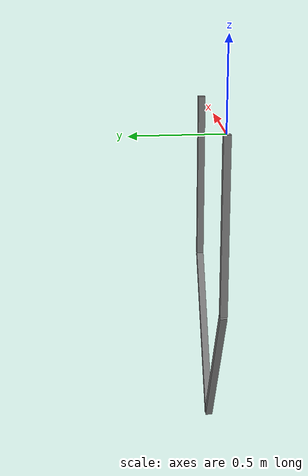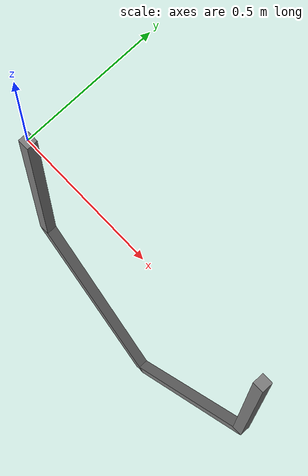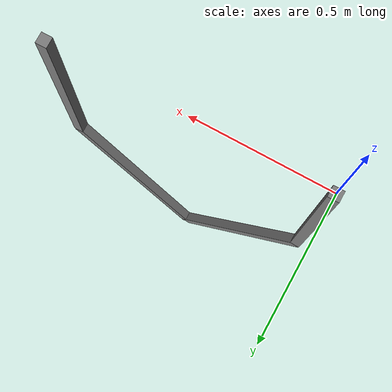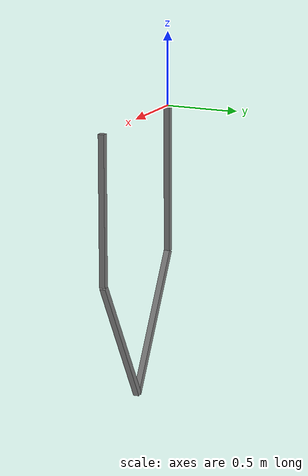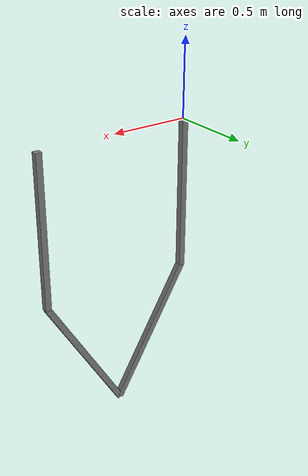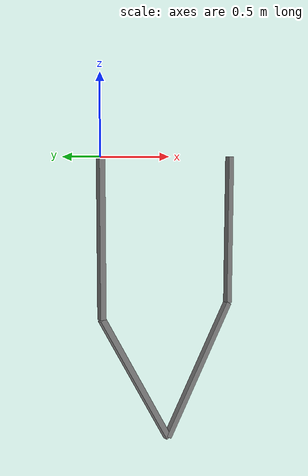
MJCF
<mujoco>
    <option gravity="0 0 -9.81">
        <flag contact="disable"/>
    </option>
    <worldbody>
        <light diffuse="0 0 0" pos="0 0 10" dir="0 0 -1"/>
        <body name="b1" pos="0 0 0" euler="0 0 0">
            <joint name="j0" type="hinge" axis="0 1 0" pos="0 0 0"/>
            <geom type="box" pos="0 0 -.5" euler="0 0 0" size=".02 .02 .5"/>
            <body name="b2" pos="0 0 -1" euler="0 -30 0">
                <joint name="j1" type="hinge" axis="0 1 0" pos="0 0 0"/>
                <geom type="box" pos="0 0 -.5" euler="0 0 0" size=".02 .02 .5"/>
            </body>
        </body>
        <body name="b3" pos="1 0 0" euler="0 0 0">
            <joint name="j2" type="hinge" axis="0 1 0" pos="0 0 0"/>
            <geom type="box" pos="0 0 -.5" euler="0 0 0" size=".02 .02 .5"/>
            <body name="b4" pos="0 0 -1" euler="0 30 0">
                <joint name="j3" type="hinge" axis="0 1 0" pos="0 0 0"/>
                <geom type="box" pos="0 0 -.5" euler="0 0 0" size=".02 .02 .5"/>

                <body name="end" pos="0 0 -1" euler="0 0 0" />
            </body>
        </body>

    </worldbody>
    <equality>
        <connect body1="b2" body2="b4" anchor="0 0 -1" active="true" />
    </equality>
    <actuator>
        <position name="aj0" joint="j0" kp="5000" kv="500"/>
        <position name="aj2" joint="j2" kp="5000" kv="500"/>
    </actuator>
</mujoco>
